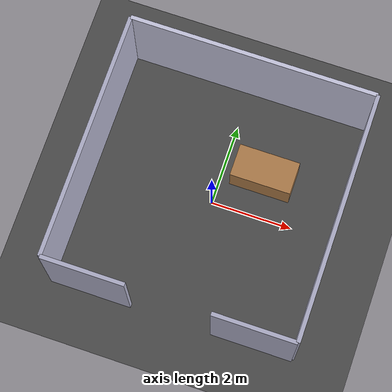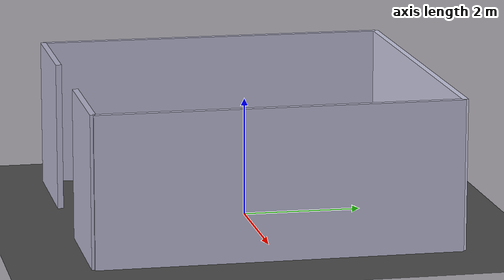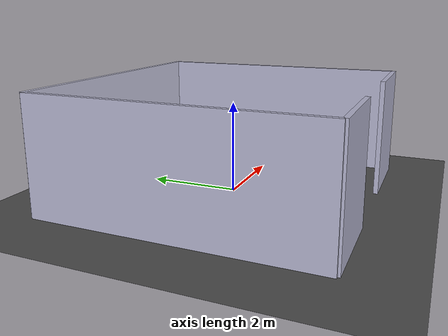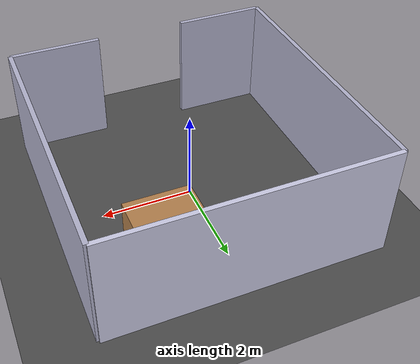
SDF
<?xml version="1.0" ?>
<sdf version="1.6">
  <world name="office_world">

    <physics type="ode">
      <max_step_size>0.001</max_step_size>
      <real_time_update_rate>1000</real_time_update_rate>
    </physics>

    <plugin name='ignition::gazebo::systems::Physics' filename='libignition-gazebo-physics-system.so'/>
    <plugin name='ignition::gazebo::systems::UserCommands' filename='libignition-gazebo-user-commands-system.so'/>
    <plugin name='ignition::gazebo::systems::SceneBroadcaster' filename='libignition-gazebo-scene-broadcaster-system.so'/>
    <plugin name='ignition::gazebo::systems::Imu' filename='ignition-gazebo-imu-system'/>
    <plugin name='ignition::gazebo::systems::Sensors' filename='ignition-gazebo-sensors-system'>
      <render_engine>ogre2</render_engine>
    </plugin>

    <scene>
      <background>0.8 0.9 1 1</background>
      <ambient>0.6 0.6 0.6 1</ambient>
      <shadows>true</shadows>
    </scene>

    <light name="sun_light" type="directional">
      <pose>0 0 10 0 0 0</pose>
      <diffuse>1 1 1 1</diffuse>
      <specular>0.2 0.2 0.2 1</specular>
      <direction>-0.5 0.1 -0.9</direction>
      <cast_shadows>true</cast_shadows>
    </light>

    <model name="floor">
      <static>true</static>
      <link name="link">
        <collision name="col">
          <geometry><plane><normal>0 0 1</normal><size>10 10</size></plane></geometry>
        </collision>
        <visual name="vis">
          <geometry><plane><normal>0 0 1</normal><size>10 10</size></plane></geometry>
          <material><ambient>0.2 0.2 0.2 1</ambient><diffuse>0.3 0.3 0.3 1</diffuse></material>
        </visual>
      </link>
    </model>

    <model name="room_structure">
      <static>true</static>

      <link name="wall_1">
        <pose>0 3 1.25 0 0 0</pose>
        <collision name="c1"><geometry><box><size>6 0.1 2.5</size></box></geometry></collision>
        <visual name="v1"><geometry><box><size>6 0.1 2.5</size></box></geometry>
        <material><ambient>0.7 0.7 0.8 1</ambient><diffuse>0.8 0.8 0.9 1</diffuse></material></visual>
      </link>

      <link name="wall_2">
        <pose>-3 0 1.25 0 0 1.57</pose>
        <collision name="c2"><geometry><box><size>6 0.1 2.5</size></box></geometry></collision>
        <visual name="v2"><geometry><box><size>6 0.1 2.5</size></box></geometry>
        <material><ambient>0.7 0.7 0.8 1</ambient></material></visual>
      </link>

      <link name="wall_3">
        <pose>3 0 1.25 0 0 1.57</pose>
        <collision name="c3"><geometry><box><size>6 0.1 2.5</size></box></geometry></collision>
        <visual name="v3"><geometry><box><size>6 0.1 2.5</size></box></geometry>
        <material><ambient>0.7 0.7 0.8 1</ambient></material></visual>
      </link>

      <link name="wall_4a">
        <pose>-2 -3 1.25 0 0 0</pose>
        <collision name="c4a"><geometry><box><size>2 0.1 2.5</size></box></geometry></collision>
        <visual name="v4a"><geometry><box><size>2 0.1 2.5</size></box></geometry>
        <material><ambient>0.7 0.7 0.8 1</ambient></material></visual>
      </link>

      <link name="wall_4b">
        <pose>2 -3 1.25 0 0 0</pose>
        <collision name="c4b"><geometry><box><size>2 0.1 2.5</size></box></geometry></collision>
        <visual name="v4b"><geometry><box><size>2 0.1 2.5</size></box></geometry>
        <material><ambient>0.7 0.7 0.8 1</ambient></material></visual>
      </link>
    </model>

    <model name="furniture">
      <static>true</static>
      <link name="desk">
        <pose>1 1 0.4 0 0 0</pose>
        <collision name="c"><geometry><box><size>1.5 0.8 0.8</size></box></geometry></collision>
        <visual name="v">
          <geometry><box><size>1.5 0.8 0.8</size></box></geometry>
          <material><script><uri>file://media/materials/scripts/gazebo.material</uri><name>Gazebo/Wood</name></script></material>
        </visual>
      </link>
    </model>

    <gui>
      <camera name="user_camera">
        <pose>8 -8 8 0 0.5 2.3</pose>
      </camera>
    </gui>

    <gui fullscreen='0'>
    <camera name='user_camera'>
     <pose>2.5 -2.5 2.0 0 0.35 2.35</pose>
    <view_controller>orbit</view_controller>
    </camera>
   </gui>

  </world>
</sdf>
